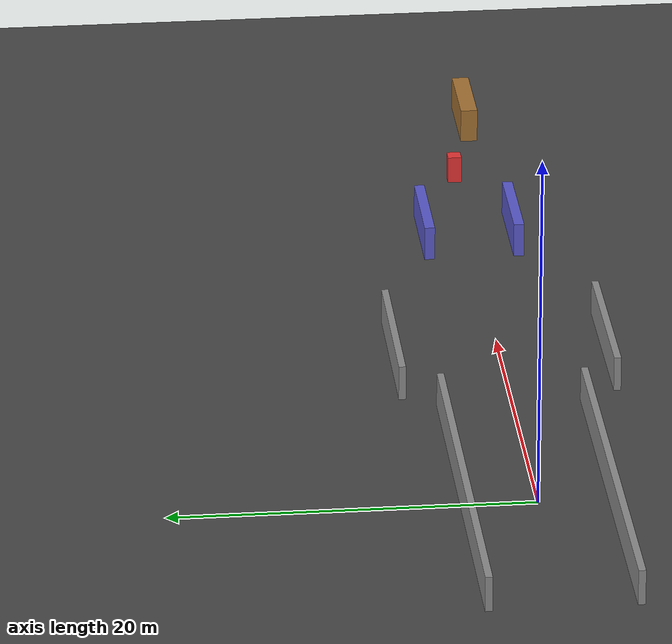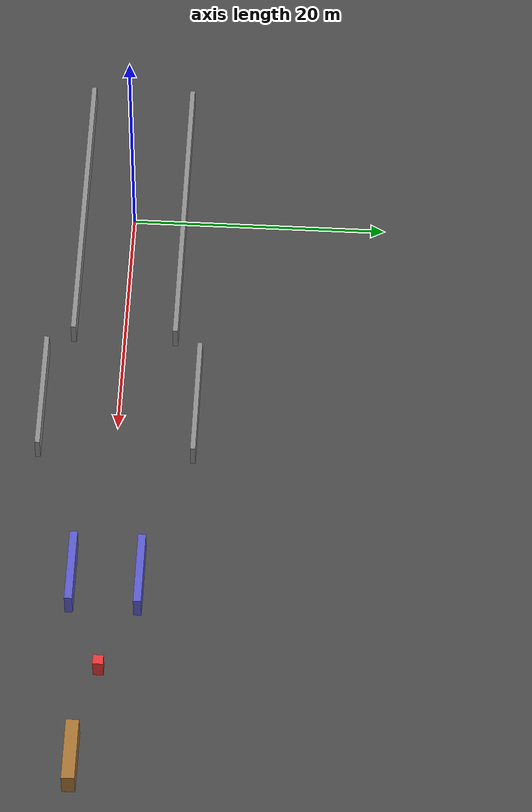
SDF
<sdf version="1.7">
 <world name="default">
  <light name="sun" type="directional">
   <pose>0 0 10 0 0 0</pose>
   <diffuse>0.8 0.8 0.8 1</diffuse>
   <specular>0.2 0.2 0.2 1</specular>
   <attenuation>
    <range>1000</range>
    <constant>0.9</constant>
    <linear>0.01</linear>
    <quadratic>0.001</quadratic>
   </attenuation>
   <direction>-0.5 0.1 -0.9</direction>
  </light>
  <model name="ground_plane">
   <static>1</static>
   <link name="link">
    <collision name="collision">
     <geometry><plane><normal>0 0 1</normal><size>120.0 40.0</size></plane></geometry>
    </collision>
    <visual name="visual">
     <geometry><plane><normal>0 0 1</normal><size>120.0 40.0</size></plane></geometry>
     <material><ambient>0.28 0.28 0.28 1</ambient><diffuse>0.28 0.28 0.28 1</diffuse></material>
    </visual>
   </link>
  </model>
  <model name="left_wall_01">
   <static>true</static>
   <pose>0.0 4.0 1.0 0 0 0.0</pose>
   <link name="link">
    <collision name="collision"><geometry><box><size>24.0 0.4 2.0</size></box></geometry></collision>
    <visual name="visual">
     <geometry><box><size>24.0 0.4 2.0</size></box></geometry>
     <material>
      <ambient>0.55 0.55 0.55 1.0</ambient>
      <diffuse>0.55 0.55 0.55 1.0</diffuse>
      <specular>0.2 0.2 0.2 1</specular>
     </material>
    </visual>
   </link>
  </model>
  <model name="right_wall_01">
   <static>true</static>
   <pose>0.0 -4.0 1.0 0 0 0.0</pose>
   <link name="link">
    <collision name="collision"><geometry><box><size>24.0 0.4 2.0</size></box></geometry></collision>
    <visual name="visual">
     <geometry><box><size>24.0 0.4 2.0</size></box></geometry>
     <material>
      <ambient>0.55 0.55 0.55 1.0</ambient>
      <diffuse>0.55 0.55 0.55 1.0</diffuse>
      <specular>0.2 0.2 0.2 1</specular>
     </material>
    </visual>
   </link>
  </model>
  <model name="cross_top_wall">
   <static>true</static>
   <pose>18.0 6.0 1.0 0 0 0.0</pose>
   <link name="link">
    <collision name="collision"><geometry><box><size>10.0 0.4 2.0</size></box></geometry></collision>
    <visual name="visual">
     <geometry><box><size>10.0 0.4 2.0</size></box></geometry>
     <material>
      <ambient>0.55 0.55 0.55 1.0</ambient>
      <diffuse>0.55 0.55 0.55 1.0</diffuse>
      <specular>0.2 0.2 0.2 1</specular>
     </material>
    </visual>
   </link>
  </model>
  <model name="cross_bottom_wall">
   <static>true</static>
   <pose>18.0 -6.0 1.0 0 0 0.0</pose>
   <link name="link">
    <collision name="collision"><geometry><box><size>10.0 0.4 2.0</size></box></geometry></collision>
    <visual name="visual">
     <geometry><box><size>10.0 0.4 2.0</size></box></geometry>
     <material>
      <ambient>0.55 0.55 0.55 1.0</ambient>
      <diffuse>0.55 0.55 0.55 1.0</diffuse>
      <specular>0.2 0.2 0.2 1</specular>
     </material>
    </visual>
   </link>
  </model>
  <model name="narrow_left">
   <static>true</static>
   <pose>34.0 2.6 1.0 0 0 0.0</pose>
   <link name="link">
    <collision name="collision"><geometry><box><size>6.0 0.6 2.0</size></box></geometry></collision>
    <visual name="visual">
     <geometry><box><size>6.0 0.6 2.0</size></box></geometry>
     <material>
      <ambient>0.35 0.35 0.8 1.0</ambient>
      <diffuse>0.35 0.35 0.8 1.0</diffuse>
      <specular>0.2 0.2 0.2 1</specular>
     </material>
    </visual>
   </link>
  </model>
  <model name="narrow_right">
   <static>true</static>
   <pose>34.0 -2.6 1.0 0 0 0.0</pose>
   <link name="link">
    <collision name="collision"><geometry><box><size>6.0 0.6 2.0</size></box></geometry></collision>
    <visual name="visual">
     <geometry><box><size>6.0 0.6 2.0</size></box></geometry>
     <material>
      <ambient>0.35 0.35 0.8 1.0</ambient>
      <diffuse>0.35 0.35 0.8 1.0</diffuse>
      <specular>0.2 0.2 0.2 1</specular>
     </material>
    </visual>
   </link>
  </model>
  <model name="merge_island">
   <static>true</static>
   <pose>50.0 -1.5 1.0 0 0 0.0</pose>
   <link name="link">
    <collision name="collision"><geometry><box><size>5.0 1.0 2.0</size></box></geometry></collision>
    <visual name="visual">
     <geometry><box><size>5.0 1.0 2.0</size></box></geometry>
     <material>
      <ambient>0.65 0.45 0.2 1.0</ambient>
      <diffuse>0.65 0.45 0.2 1.0</diffuse>
      <specular>0.2 0.2 0.2 1</specular>
     </material>
    </visual>
   </link>
  </model>
  <model name="moving_box_1">
   <static>true</static>
   <pose>42.0 0.0 0.8 0 0 0.0</pose>
   <link name="link">
    <collision name="collision"><geometry><box><size>0.8 0.8 1.6</size></box></geometry></collision>
    <visual name="visual">
     <geometry><box><size>0.8 0.8 1.6</size></box></geometry>
     <material>
      <ambient>0.9 0.2 0.2 1.0</ambient>
      <diffuse>0.9 0.2 0.2 1.0</diffuse>
      <specular>0.2 0.2 0.2 1</specular>
     </material>
    </visual>
   </link>
   <plugin name="obstacle_motion" filename="libobstaclePathPlugin.so">
    <orientation>false</orientation>
    <loop>1</loop>
    <velocity>0.5</velocity>
    <angular_velocity>0.0</angular_velocity>
    <path><waypoint>40.0 0.0 0.8</waypoint><waypoint>46.0 0.0 0.8</waypoint></path>
   </plugin>
  </model>
  <gravity>0 0 -9.8</gravity>
  <magnetic_field>6e-06 2.3e-05 -4.2e-05</magnetic_field>
  <atmosphere type="adiabatic"/>
  <physics type="ode">
   <max_step_size>0.001</max_step_size>
   <real_time_factor>1</real_time_factor>
   <real_time_update_rate>1000</real_time_update_rate>
  </physics>
  <scene><ambient>0.4 0.4 0.4 1</ambient><background>0.7 0.7 0.7 1</background><shadows>1</shadows></scene>
  <spherical_coordinates>
   <surface_model>EARTH_WGS84</surface_model>
   <latitude_deg>0</latitude_deg>
   <longitude_deg>0</longitude_deg>
   <elevation>0</elevation>
   <heading_deg>0</heading_deg>
  </spherical_coordinates>
 </world>
</sdf>
